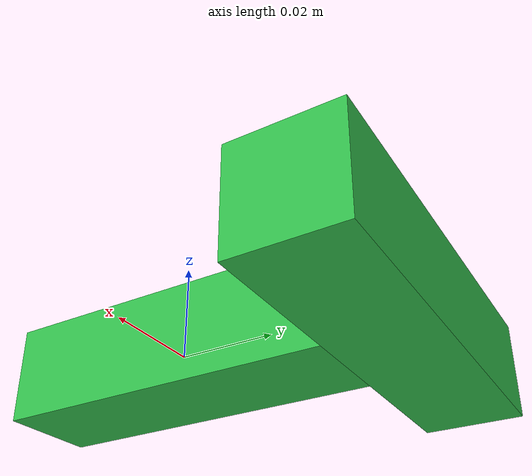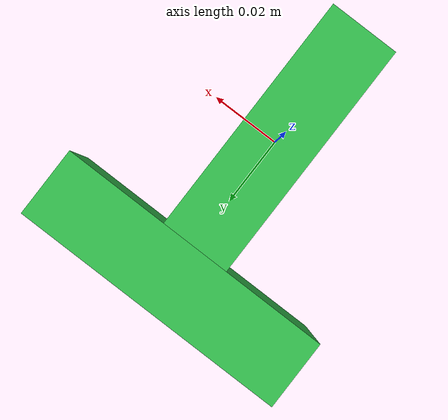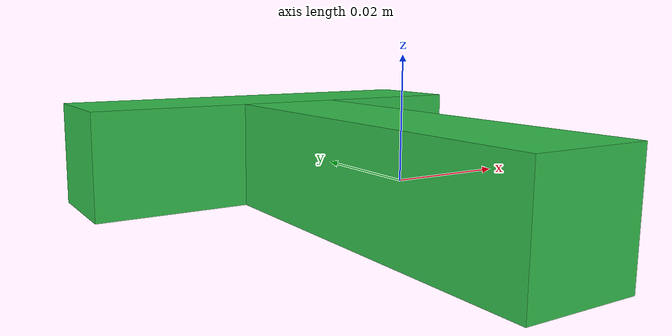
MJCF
<!-- T形物体（freejoint 由场景 mount 添加，对齐 cube/plate 惯例） -->
<mujoco model="t_obj">
  <worldbody>
    <body name="t_obj">
      <inertial mass="0.08" diaginertia="5e-5 3e-5 8e-5" pos="0 0 0"/>
      <geom name="t_obj_stem" type="box" size="0.01 0.035 0.01" rgba="0.2 0.75 0.3 1" friction="0.5 0.4 0.2"/>
      <geom name="t_obj_cross" type="box" size="0.04 0.01 0.01" pos="0 0.045 0" rgba="0.2 0.75 0.3 1" friction="0.5 0.4 0.2"/>
      <site name="t_obj_center" size="0.005"/>
    </body>
  </worldbody>
</mujoco>
